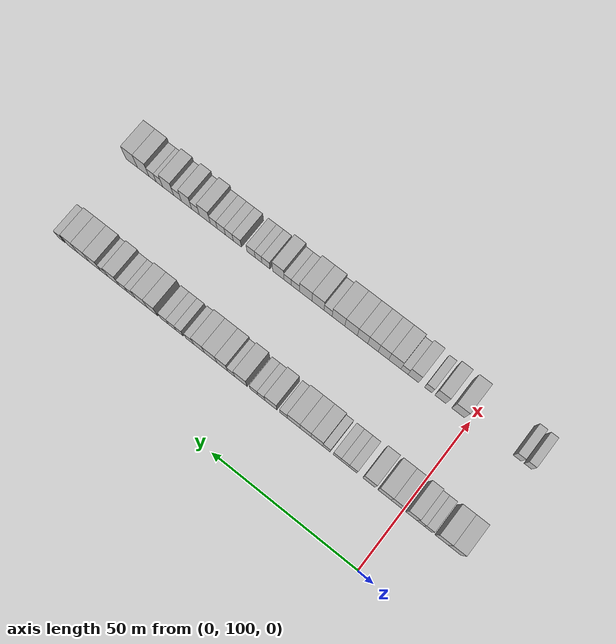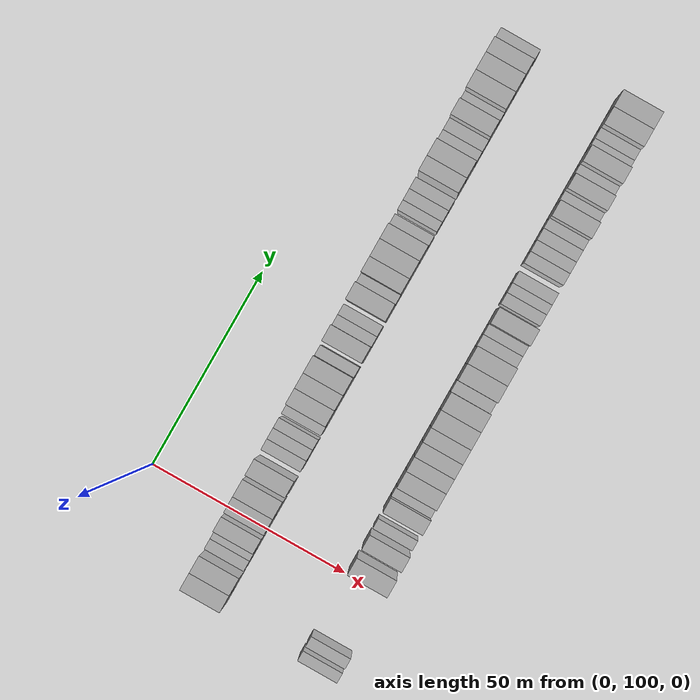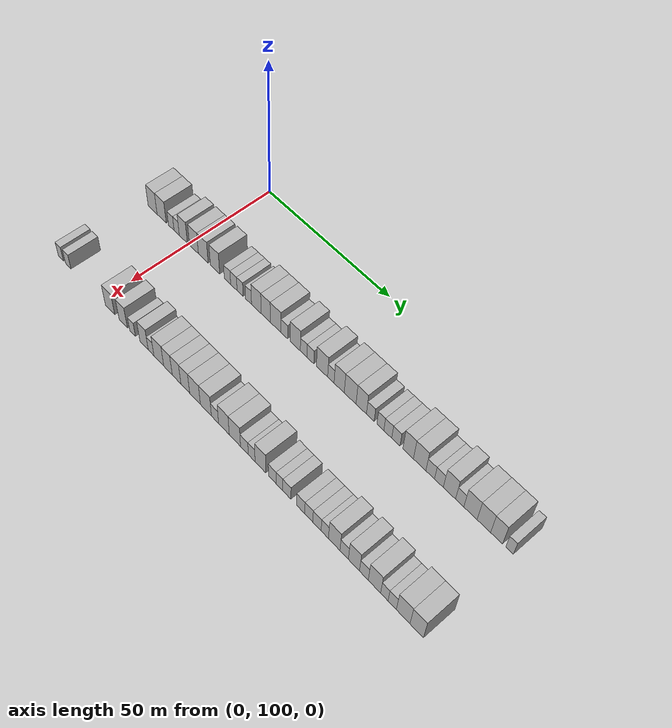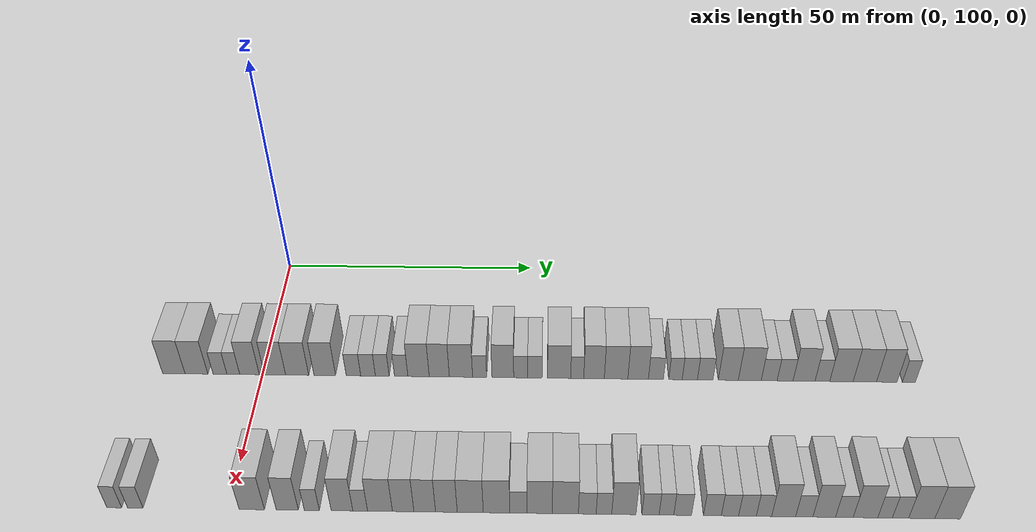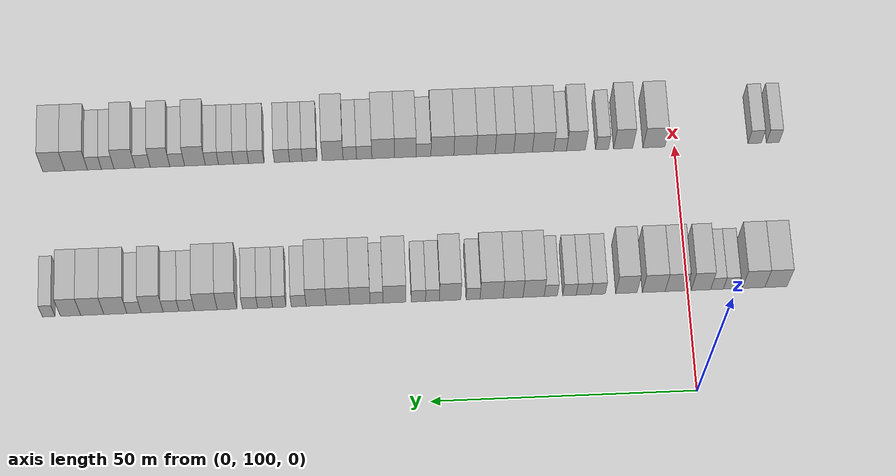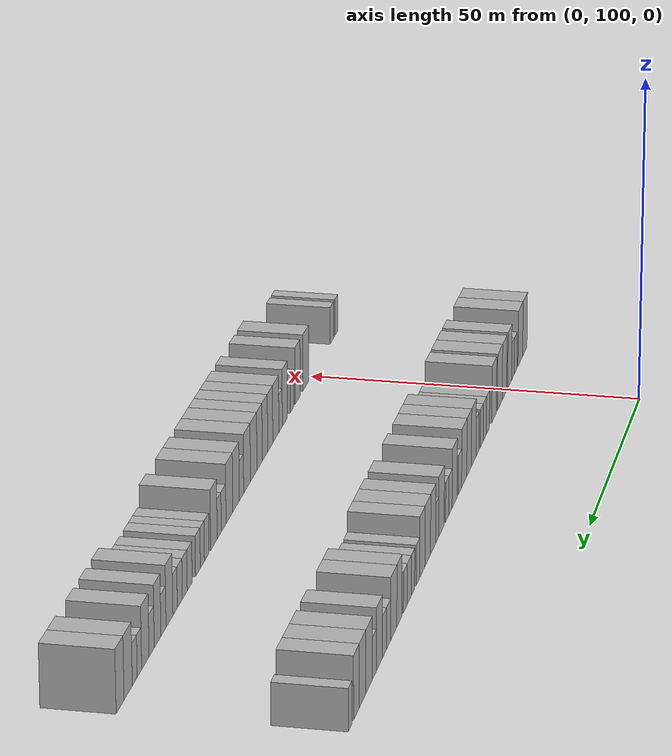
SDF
<sdf version="1.6">
 <world name="default">
  <model name="building_72">
   <static>1</static>
   <pose>25.0000 83.2358 0 0.000000 0.000000 0.000000</pose>
   <link name="link">
    <pose>0 0 4.50 0 0 0</pose>
    <collision name="collision"><geometry><box><size>10.0000 4.2344 9.0000</size></box></geometry></collision>
    <visual name="visual">
     <cast_shadows>0</cast_shadows>
     <geometry><box><size>10.0000 4.2344 9.0000</size></box></geometry>
     <material>
      <script>
       <uri>model://HANNAS_wall/materials/scripts</uri>
       <uri>model://HANNAS_wall/materials/textures</uri>
       <name>vrc/HANNAS_wall</name>
      </script>
     </material>
    </visual>
   </link>
  </model>
  <model name="building_73">
   <static>1</static>
   <pose>25.0000 87.5097 0 0.000000 0.000000 0.000000</pose>
   <link name="link">
    <pose>0 0 4.50 0 0 0</pose>
    <collision name="collision"><geometry><box><size>10.0000 4.3134 9.0000</size></box></geometry></collision>
    <visual name="visual">
     <cast_shadows>0</cast_shadows>
     <geometry><box><size>10.0000 4.3134 9.0000</size></box></geometry>
     <material>
      <script>
       <uri>model://HANNAS_wall/materials/scripts</uri>
       <uri>model://HANNAS_wall/materials/textures</uri>
       <name>vrc/HANNAS_wall</name>
      </script>
     </material>
    </visual>
   </link>
  </model>
  <model name="building_74">
   <static>1</static>
   <pose>25.0000 91.9741 0 0.000000 0.000000 0.000000</pose>
   <link name="link">
    <pose>0 0 3.00 0 0 0</pose>
    <collision name="collision"><geometry><box><size>10.0000 2.6152 6.0000</size></box></geometry></collision>
    <visual name="visual">
     <cast_shadows>0</cast_shadows>
     <geometry><box><size>10.0000 2.6152 6.0000</size></box></geometry>
     <material>
      <script>
       <uri>model://HANNAS_wall/materials/scripts</uri>
       <uri>model://HANNAS_wall/materials/textures</uri>
       <name>vrc/HANNAS_wall</name>
      </script>
     </material>
    </visual>
   </link>
  </model>
  <model name="building_75">
   <static>1</static>
   <pose>25.0000 94.4930 0 0.000000 0.000000 0.000000</pose>
   <link name="link">
    <pose>0 0 3.00 0 0 0</pose>
    <collision name="collision"><geometry><box><size>10.0000 2.4226 6.0000</size></box></geometry></collision>
    <visual name="visual">
     <cast_shadows>0</cast_shadows>
     <geometry><box><size>10.0000 2.4226 6.0000</size></box></geometry>
     <material>
      <script>
       <uri>model://HANNAS_wall/materials/scripts</uri>
       <uri>model://HANNAS_wall/materials/textures</uri>
       <name>vrc/HANNAS_wall</name>
      </script>
     </material>
    </visual>
   </link>
  </model>
  <model name="building_76">
   <static>1</static>
   <pose>25.0000 97.5545 0 0.000000 0.000000 0.000000</pose>
   <link name="link">
    <pose>0 0 4.50 0 0 0</pose>
    <collision name="collision"><geometry><box><size>10.0000 3.7004 9.0000</size></box></geometry></collision>
    <visual name="visual">
     <cast_shadows>0</cast_shadows>
     <geometry><box><size>10.0000 3.7004 9.0000</size></box></geometry>
     <material>
      <script>
       <uri>model://HANNAS_wall/materials/scripts</uri>
       <uri>model://HANNAS_wall/materials/textures</uri>
       <name>vrc/HANNAS_wall</name>
      </script>
     </material>
    </visual>
   </link>
  </model>
  <model name="building_77">
   <static>1</static>
   <pose>25.0000 102.3919 0 0.000000 0.000000 0.000000</pose>
   <link name="link">
    <pose>0 0 4.50 0 0 0</pose>
    <collision name="collision"><geometry><box><size>10.0000 3.9744 9.0000</size></box></geometry></collision>
    <visual name="visual">
     <cast_shadows>0</cast_shadows>
     <geometry><box><size>10.0000 3.9744 9.0000</size></box></geometry>
     <material>
      <script>
       <uri>model://HANNAS_wall/materials/scripts</uri>
       <uri>model://HANNAS_wall/materials/textures</uri>
       <name>vrc/HANNAS_wall</name>
      </script>
     </material>
    </visual>
   </link>
  </model>
  <model name="building_78">
   <static>1</static>
   <pose>25.0000 106.5588 0 0.000000 0.000000 0.000000</pose>
   <link name="link">
    <pose>0 0 4.50 0 0 0</pose>
    <collision name="collision"><geometry><box><size>10.0000 4.3595 9.0000</size></box></geometry></collision>
    <visual name="visual">
     <cast_shadows>0</cast_shadows>
     <geometry><box><size>10.0000 4.3595 9.0000</size></box></geometry>
     <material>
      <script>
       <uri>model://HANNAS_wall/materials/scripts</uri>
       <uri>model://HANNAS_wall/materials/textures</uri>
       <name>vrc/HANNAS_wall</name>
      </script>
     </material>
    </visual>
   </link>
  </model>
  <model name="building_79">
   <static>1</static>
   <pose>25.0000 111.7794 0 0.000000 0.000000 0.000000</pose>
   <link name="link">
    <pose>0 0 4.50 0 0 0</pose>
    <collision name="collision"><geometry><box><size>10.0000 4.0816 9.0000</size></box></geometry></collision>
    <visual name="visual">
     <cast_shadows>0</cast_shadows>
     <geometry><box><size>10.0000 4.0816 9.0000</size></box></geometry>
     <material>
      <script>
       <uri>model://HANNAS_wall/materials/scripts</uri>
       <uri>model://HANNAS_wall/materials/textures</uri>
       <name>vrc/HANNAS_wall</name>
      </script>
     </material>
    </visual>
   </link>
  </model>
  <model name="building_80">
   <static>1</static>
   <pose>25.0000 117.1928 0 0.000000 0.000000 0.000000</pose>
   <link name="link">
    <pose>0 0 3.00 0 0 0</pose>
    <collision name="collision"><geometry><box><size>10.0000 2.7452 6.0000</size></box></geometry></collision>
    <visual name="visual">
     <cast_shadows>0</cast_shadows>
     <geometry><box><size>10.0000 2.7452 6.0000</size></box></geometry>
     <material>
      <script>
       <uri>model://HANNAS_wall/materials/scripts</uri>
       <uri>model://HANNAS_wall/materials/textures</uri>
       <name>vrc/HANNAS_wall</name>
      </script>
     </material>
    </visual>
   </link>
  </model>
  <model name="building_81">
   <static>1</static>
   <pose>25.0000 119.9479 0 0.000000 0.000000 0.000000</pose>
   <link name="link">
    <pose>0 0 3.00 0 0 0</pose>
    <collision name="collision"><geometry><box><size>10.0000 2.7650 6.0000</size></box></geometry></collision>
    <visual name="visual">
     <cast_shadows>0</cast_shadows>
     <geometry><box><size>10.0000 2.7650 6.0000</size></box></geometry>
     <material>
      <script>
       <uri>model://HANNAS_wall/materials/scripts</uri>
       <uri>model://HANNAS_wall/materials/textures</uri>
       <name>vrc/HANNAS_wall</name>
      </script>
     </material>
    </visual>
   </link>
  </model>
  <model name="building_82">
   <static>1</static>
   <pose>25.0000 122.6260 0 0.000000 0.000000 0.000000</pose>
   <link name="link">
    <pose>0 0 3.00 0 0 0</pose>
    <collision name="collision"><geometry><box><size>10.0000 2.5912 6.0000</size></box></geometry></collision>
    <visual name="visual">
     <cast_shadows>0</cast_shadows>
     <geometry><box><size>10.0000 2.5912 6.0000</size></box></geometry>
     <material>
      <script>
       <uri>model://HANNAS_wall/materials/scripts</uri>
       <uri>model://HANNAS_wall/materials/textures</uri>
       <name>vrc/HANNAS_wall</name>
      </script>
     </material>
    </visual>
   </link>
  </model>
  <model name="building_83">
   <static>1</static>
   <pose>25.0000 126.1845 0 0.000000 0.000000 0.000000</pose>
   <link name="link">
    <pose>0 0 3.00 0 0 0</pose>
    <collision name="collision"><geometry><box><size>10.0000 2.5257 6.0000</size></box></geometry></collision>
    <visual name="visual">
     <cast_shadows>0</cast_shadows>
     <geometry><box><size>10.0000 2.5257 6.0000</size></box></geometry>
     <material>
      <script>
       <uri>model://HANNAS_wall/materials/scripts</uri>
       <uri>model://HANNAS_wall/materials/textures</uri>
       <name>vrc/HANNAS_wall</name>
      </script>
     </material>
    </visual>
   </link>
  </model>
  <model name="building_84">
   <static>1</static>
   <pose>25.0000 129.4608 0 0.000000 0.000000 0.000000</pose>
   <link name="link">
    <pose>0 0 4.50 0 0 0</pose>
    <collision name="collision"><geometry><box><size>10.0000 4.0270 9.0000</size></box></geometry></collision>
    <visual name="visual">
     <cast_shadows>0</cast_shadows>
     <geometry><box><size>10.0000 4.0270 9.0000</size></box></geometry>
     <material>
      <script>
       <uri>model://HANNAS_wall/materials/scripts</uri>
       <uri>model://HANNAS_wall/materials/textures</uri>
       <name>vrc/HANNAS_wall</name>
      </script>
     </material>
    </visual>
   </link>
  </model>
  <model name="building_85">
   <static>1</static>
   <pose>25.0000 133.3678 0 0.000000 0.000000 0.000000</pose>
   <link name="link">
    <pose>0 0 4.50 0 0 0</pose>
    <collision name="collision"><geometry><box><size>10.0000 3.7869 9.0000</size></box></geometry></collision>
    <visual name="visual">
     <cast_shadows>0</cast_shadows>
     <geometry><box><size>10.0000 3.7869 9.0000</size></box></geometry>
     <material>
      <script>
       <uri>model://HANNAS_wall/materials/scripts</uri>
       <uri>model://HANNAS_wall/materials/textures</uri>
       <name>vrc/HANNAS_wall</name>
      </script>
     </material>
    </visual>
   </link>
  </model>
  <model name="building_86">
   <static>1</static>
   <pose>25.0000 137.4523 0 0.000000 0.000000 0.000000</pose>
   <link name="link">
    <pose>0 0 4.50 0 0 0</pose>
    <collision name="collision"><geometry><box><size>10.0000 4.3822 9.0000</size></box></geometry></collision>
    <visual name="visual">
     <cast_shadows>0</cast_shadows>
     <geometry><box><size>10.0000 4.3822 9.0000</size></box></geometry>
     <material>
      <script>
       <uri>model://HANNAS_wall/materials/scripts</uri>
       <uri>model://HANNAS_wall/materials/textures</uri>
       <name>vrc/HANNAS_wall</name>
      </script>
     </material>
    </visual>
   </link>
  </model>
  <model name="building_87">
   <static>1</static>
   <pose>25.0000 140.9687 0 0.000000 0.000000 0.000000</pose>
   <link name="link">
    <pose>0 0 3.00 0 0 0</pose>
    <collision name="collision"><geometry><box><size>10.0000 2.6504 6.0000</size></box></geometry></collision>
    <visual name="visual">
     <cast_shadows>0</cast_shadows>
     <geometry><box><size>10.0000 2.6504 6.0000</size></box></geometry>
     <material>
      <script>
       <uri>model://HANNAS_wall/materials/scripts</uri>
       <uri>model://HANNAS_wall/materials/textures</uri>
       <name>vrc/HANNAS_wall</name>
      </script>
     </material>
    </visual>
   </link>
  </model>
  <model name="building_88">
   <static>1</static>
   <pose>25.0000 145.3380 0 0.000000 0.000000 0.000000</pose>
   <link name="link">
    <pose>0 0 4.50 0 0 0</pose>
    <collision name="collision"><geometry><box><size>10.0000 4.0882 9.0000</size></box></geometry></collision>
    <visual name="visual">
     <cast_shadows>0</cast_shadows>
     <geometry><box><size>10.0000 4.0882 9.0000</size></box></geometry>
     <material>
      <script>
       <uri>model://HANNAS_wall/materials/scripts</uri>
       <uri>model://HANNAS_wall/materials/textures</uri>
       <name>vrc/HANNAS_wall</name>
      </script>
     </material>
    </visual>
   </link>
  </model>
  <model name="building_89">
   <static>1</static>
   <pose>25.0000 148.6905 0 0.000000 0.000000 0.000000</pose>
   <link name="link">
    <pose>0 0 3.00 0 0 0</pose>
    <collision name="collision"><geometry><box><size>10.0000 2.6167 6.0000</size></box></geometry></collision>
    <visual name="visual">
     <cast_shadows>0</cast_shadows>
     <geometry><box><size>10.0000 2.6167 6.0000</size></box></geometry>
     <material>
      <script>
       <uri>model://HANNAS_wall/materials/scripts</uri>
       <uri>model://HANNAS_wall/materials/textures</uri>
       <name>vrc/HANNAS_wall</name>
      </script>
     </material>
    </visual>
   </link>
  </model>
  <model name="building_90">
   <static>1</static>
   <pose>25.0000 151.3574 0 0.000000 0.000000 0.000000</pose>
   <link name="link">
    <pose>0 0 3.00 0 0 0</pose>
    <collision name="collision"><geometry><box><size>10.0000 2.7171 6.0000</size></box></geometry></collision>
    <visual name="visual">
     <cast_shadows>0</cast_shadows>
     <geometry><box><size>10.0000 2.7171 6.0000</size></box></geometry>
     <material>
      <script>
       <uri>model://HANNAS_wall/materials/scripts</uri>
       <uri>model://HANNAS_wall/materials/textures</uri>
       <name>vrc/HANNAS_wall</name>
      </script>
     </material>
    </visual>
   </link>
  </model>
  <model name="building_91">
   <static>1</static>
   <pose>25.0000 155.8959 0 0.000000 0.000000 0.000000</pose>
   <link name="link">
    <pose>0 0 4.50 0 0 0</pose>
    <collision name="collision"><geometry><box><size>10.0000 4.3600 9.0000</size></box></geometry></collision>
    <visual name="visual">
     <cast_shadows>0</cast_shadows>
     <geometry><box><size>10.0000 4.3600 9.0000</size></box></geometry>
     <material>
      <script>
       <uri>model://HANNAS_wall/materials/scripts</uri>
       <uri>model://HANNAS_wall/materials/textures</uri>
       <name>vrc/HANNAS_wall</name>
      </script>
     </material>
    </visual>
   </link>
  </model>
  <model name="building_92">
   <static>1</static>
   <pose>25.0000 159.3043 0 0.000000 0.000000 0.000000</pose>
   <link name="link">
    <pose>0 0 3.00 0 0 0</pose>
    <collision name="collision"><geometry><box><size>10.0000 2.4568 6.0000</size></box></geometry></collision>
    <visual name="visual">
     <cast_shadows>0</cast_shadows>
     <geometry><box><size>10.0000 2.4568 6.0000</size></box></geometry>
     <material>
      <script>
       <uri>model://HANNAS_wall/materials/scripts</uri>
       <uri>model://HANNAS_wall/materials/textures</uri>
       <name>vrc/HANNAS_wall</name>
      </script>
     </material>
    </visual>
   </link>
  </model>
  <model name="building_93">
   <static>1</static>
   <pose>25.0000 162.4663 0 0.000000 0.000000 0.000000</pose>
   <link name="link">
    <pose>0 0 4.50 0 0 0</pose>
    <collision name="collision"><geometry><box><size>10.0000 3.8673 9.0000</size></box></geometry></collision>
    <visual name="visual">
     <cast_shadows>0</cast_shadows>
     <geometry><box><size>10.0000 3.8673 9.0000</size></box></geometry>
     <material>
      <script>
       <uri>model://HANNAS_wall/materials/scripts</uri>
       <uri>model://HANNAS_wall/materials/textures</uri>
       <name>vrc/HANNAS_wall</name>
      </script>
     </material>
    </visual>
   </link>
  </model>
  <model name="building_94">
   <static>1</static>
   <pose>25.0000 166.6119 0 0.000000 0.000000 0.000000</pose>
   <link name="link">
    <pose>0 0 4.50 0 0 0</pose>
    <collision name="collision"><geometry><box><size>10.0000 4.4240 9.0000</size></box></geometry></collision>
    <visual name="visual">
     <cast_shadows>0</cast_shadows>
     <geometry><box><size>10.0000 4.4240 9.0000</size></box></geometry>
     <material>
      <script>
       <uri>model://HANNAS_wall/materials/scripts</uri>
       <uri>model://HANNAS_wall/materials/textures</uri>
       <name>vrc/HANNAS_wall</name>
      </script>
     </material>
    </visual>
   </link>
  </model>
  <model name="building_95">
   <static>1</static>
   <pose>25.0000 170.7490 0 0.000000 0.000000 0.000000</pose>
   <link name="link">
    <pose>0 0 4.50 0 0 0</pose>
    <collision name="collision"><geometry><box><size>10.0000 3.8502 9.0000</size></box></geometry></collision>
    <visual name="visual">
     <cast_shadows>0</cast_shadows>
     <geometry><box><size>10.0000 3.8502 9.0000</size></box></geometry>
     <material>
      <script>
       <uri>model://HANNAS_wall/materials/scripts</uri>
       <uri>model://HANNAS_wall/materials/textures</uri>
       <name>vrc/HANNAS_wall</name>
      </script>
     </material>
    </visual>
   </link>
  </model>
  <model name="building_96">
   <static>1</static>
   <pose>25.0000 174.0809 0 0.000000 0.000000 0.000000</pose>
   <link name="link">
    <pose>0 0 3.00 0 0 0</pose>
    <collision name="collision"><geometry><box><size>10.0000 2.8134 6.0000</size></box></geometry></collision>
    <visual name="visual">
     <cast_shadows>0</cast_shadows>
     <geometry><box><size>10.0000 2.8134 6.0000</size></box></geometry>
     <material>
      <script>
       <uri>model://HANNAS_wall/materials/scripts</uri>
       <uri>model://HANNAS_wall/materials/textures</uri>
       <name>vrc/HANNAS_wall</name>
      </script>
     </material>
    </visual>
   </link>
  </model>
  <model name="building_97">
   <static>1</static>
   <pose>25.0000 177.7469 0 0.000000 0.000000 0.000000</pose>
   <link name="link">
    <pose>0 0 3.00 0 0 0</pose>
    <collision name="collision"><geometry><box><size>10.0000 2.5187 6.0000</size></box></geometry></collision>
    <visual name="visual">
     <cast_shadows>0</cast_shadows>
     <geometry><box><size>10.0000 2.5187 6.0000</size></box></geometry>
     <material>
      <script>
       <uri>model://HANNAS_wall/materials/scripts</uri>
       <uri>model://HANNAS_wall/materials/textures</uri>
       <name>vrc/HANNAS_wall</name>
      </script>
     </material>
    </visual>
   </link>
  </model>
  <model name="building_98">
   <static>1</static>
   <pose>25.0000 180.4329 0 0.000000 0.000000 0.000000</pose>
   <link name="link">
    <pose>0 0 3.00 0 0 0</pose>
    <collision name="collision"><geometry><box><size>10.0000 2.8532 6.0000</size></box></geometry></collision>
    <visual name="visual">
     <cast_shadows>0</cast_shadows>
     <geometry><box><size>10.0000 2.8532 6.0000</size></box></geometry>
     <material>
      <script>
       <uri>model://HANNAS_wall/materials/scripts</uri>
       <uri>model://HANNAS_wall/materials/textures</uri>
       <name>vrc/HANNAS_wall</name>
      </script>
     </material>
    </visual>
   </link>
  </model>
  <model name="building_99">
   <static>1</static>
   <pose>25.0000 183.3173 0 0.000000 0.000000 0.000000</pose>
   <link name="link">
    <pose>0 0 3.00 0 0 0</pose>
    <collision name="collision"><geometry><box><size>10.0000 2.9156 6.0000</size></box></geometry></collision>
    <visual name="visual">
     <cast_shadows>0</cast_shadows>
     <geometry><box><size>10.0000 2.9156 6.0000</size></box></geometry>
     <material>
      <script>
       <uri>model://HANNAS_wall/materials/scripts</uri>
       <uri>model://HANNAS_wall/materials/textures</uri>
       <name>vrc/HANNAS_wall</name>
      </script>
     </material>
    </visual>
   </link>
  </model>
  <model name="building_100">
   <static>1</static>
   <pose>25.0000 187.6502 0 0.000000 0.000000 0.000000</pose>
   <link name="link">
    <pose>0 0 4.50 0 0 0</pose>
    <collision name="collision"><geometry><box><size>10.0000 3.7503 9.0000</size></box></geometry></collision>
    <visual name="visual">
     <cast_shadows>0</cast_shadows>
     <geometry><box><size>10.0000 3.7503 9.0000</size></box></geometry>
     <material>
      <script>
       <uri>model://HANNAS_wall/materials/scripts</uri>
       <uri>model://HANNAS_wall/materials/textures</uri>
       <name>vrc/HANNAS_wall</name>
      </script>
     </material>
    </visual>
   </link>
  </model>
  <model name="building_101">
   <static>1</static>
   <pose>25.0000 191.6725 0 0.000000 0.000000 0.000000</pose>
   <link name="link">
    <pose>0 0 4.50 0 0 0</pose>
    <collision name="collision"><geometry><box><size>10.0000 4.2942 9.0000</size></box></geometry></collision>
    <visual name="visual">
     <cast_shadows>0</cast_shadows>
     <geometry><box><size>10.0000 4.2942 9.0000</size></box></geometry>
     <material>
      <script>
       <uri>model://HANNAS_wall/materials/scripts</uri>
       <uri>model://HANNAS_wall/materials/textures</uri>
       <name>vrc/HANNAS_wall</name>
      </script>
     </material>
    </visual>
   </link>
  </model>
  <model name="building_102">
   <static>1</static>
   <pose>25.0000 195.3036 0 0.000000 0.000000 0.000000</pose>
   <link name="link">
    <pose>0 0 3.00 0 0 0</pose>
    <collision name="collision"><geometry><box><size>10.0000 2.9680 6.0000</size></box></geometry></collision>
    <visual name="visual">
     <cast_shadows>0</cast_shadows>
     <geometry><box><size>10.0000 2.9680 6.0000</size></box></geometry>
     <material>
      <script>
       <uri>model://HANNAS_wall/materials/scripts</uri>
       <uri>model://HANNAS_wall/materials/textures</uri>
       <name>vrc/HANNAS_wall</name>
      </script>
     </material>
    </visual>
   </link>
  </model>
  <model name="building_103">
   <static>1</static>
   <pose>25.0000 198.2816 0 0.000000 0.000000 0.000000</pose>
   <link name="link">
    <pose>0 0 3.00 0 0 0</pose>
    <collision name="collision"><geometry><box><size>10.0000 2.9878 6.0000</size></box></geometry></collision>
    <visual name="visual">
     <cast_shadows>0</cast_shadows>
     <geometry><box><size>10.0000 2.9878 6.0000</size></box></geometry>
     <material>
      <script>
       <uri>model://HANNAS_wall/materials/scripts</uri>
       <uri>model://HANNAS_wall/materials/textures</uri>
       <name>vrc/HANNAS_wall</name>
      </script>
     </material>
    </visual>
   </link>
  </model>
  <model name="building_104">
   <static>1</static>
   <pose>25.0000 201.8304 0 0.000000 0.000000 0.000000</pose>
   <link name="link">
    <pose>0 0 4.50 0 0 0</pose>
    <collision name="collision"><geometry><box><size>10.0000 4.1099 9.0000</size></box></geometry></collision>
    <visual name="visual">
     <cast_shadows>0</cast_shadows>
     <geometry><box><size>10.0000 4.1099 9.0000</size></box></geometry>
     <material>
      <script>
       <uri>model://HANNAS_wall/materials/scripts</uri>
       <uri>model://HANNAS_wall/materials/textures</uri>
       <name>vrc/HANNAS_wall</name>
      </script>
     </material>
    </visual>
   </link>
  </model>
  <model name="building_105">
   <static>1</static>
   <pose>25.0000 205.2563 0 0.000000 0.000000 0.000000</pose>
   <link name="link">
    <pose>0 0 3.00 0 0 0</pose>
    <collision name="collision"><geometry><box><size>10.0000 2.7419 6.0000</size></box></geometry></collision>
    <visual name="visual">
     <cast_shadows>0</cast_shadows>
     <geometry><box><size>10.0000 2.7419 6.0000</size></box></geometry>
     <material>
      <script>
       <uri>model://HANNAS_wall/materials/scripts</uri>
       <uri>model://HANNAS_wall/materials/textures</uri>
       <name>vrc/HANNAS_wall</name>
      </script>
     </material>
    </visual>
   </link>
  </model>
  <model name="building_106">
   <static>1</static>
   <pose>25.0000 208.8102 0 0.000000 0.000000 0.000000</pose>
   <link name="link">
    <pose>0 0 4.50 0 0 0</pose>
    <collision name="collision"><geometry><box><size>10.0000 4.3661 9.0000</size></box></geometry></collision>
    <visual name="visual">
     <cast_shadows>0</cast_shadows>
     <geometry><box><size>10.0000 4.3661 9.0000</size></box></geometry>
     <material>
      <script>
       <uri>model://HANNAS_wall/materials/scripts</uri>
       <uri>model://HANNAS_wall/materials/textures</uri>
       <name>vrc/HANNAS_wall</name>
      </script>
     </material>
    </visual>
   </link>
  </model>
  <model name="building_107">
   <static>1</static>
   <pose>25.0000 213.1871 0 0.000000 0.000000 0.000000</pose>
   <link name="link">
    <pose>0 0 4.50 0 0 0</pose>
    <collision name="collision"><geometry><box><size>10.0000 4.3876 9.0000</size></box></geometry></collision>
    <visual name="visual">
     <cast_shadows>0</cast_shadows>
     <geometry><box><size>10.0000 4.3876 9.0000</size></box></geometry>
     <material>
      <script>
       <uri>model://HANNAS_wall/materials/scripts</uri>
       <uri>model://HANNAS_wall/materials/textures</uri>
       <name>vrc/HANNAS_wall</name>
      </script>
     </material>
    </visual>
   </link>
  </model>
  <model name="building_108">
   <static>1</static>
   <pose>25.0000 217.2935 0 0.000000 0.000000 0.000000</pose>
   <link name="link">
    <pose>0 0 4.50 0 0 0</pose>
    <collision name="collision"><geometry><box><size>10.0000 3.8252 9.0000</size></box></geometry></collision>
    <visual name="visual">
     <cast_shadows>0</cast_shadows>
     <geometry><box><size>10.0000 3.8252 9.0000</size></box></geometry>
     <material>
      <script>
       <uri>model://HANNAS_wall/materials/scripts</uri>
       <uri>model://HANNAS_wall/materials/textures</uri>
       <name>vrc/HANNAS_wall</name>
      </script>
     </material>
    </visual>
   </link>
  </model>
  <model name="building_109">
   <static>1</static>
   <pose>25.0000 221.4090 0 0.000000 0.000000 0.000000</pose>
   <link name="link">
    <pose>0 0 3.00 0 0 0</pose>
    <collision name="collision"><geometry><box><size>10.0000 2.4059 6.0000</size></box></geometry></collision>
    <visual name="visual">
     <cast_shadows>0</cast_shadows>
     <geometry><box><size>10.0000 2.4059 6.0000</size></box></geometry>
     <material>
      <script>
       <uri>model://HANNAS_wall/materials/scripts</uri>
       <uri>model://HANNAS_wall/materials/textures</uri>
       <name>vrc/HANNAS_wall</name>
      </script>
     </material>
    </visual>
   </link>
  </model>
  <model name="building_184">
   <static>1</static>
   <pose>55.0000 80.7401 0 0.000000 0.000000 0.000000</pose>
   <link name="link">
    <pose>0 0 3.00 0 0 0</pose>
    <collision name="collision"><geometry><box><size>10.0000 2.5058 6.0000</size></box></geometry></collision>
    <visual name="visual">
     <cast_shadows>0</cast_shadows>
     <geometry><box><size>10.0000 2.5058 6.0000</size></box></geometry>
     <material>
      <script>
       <uri>model://HANNAS_wall/materials/scripts</uri>
       <uri>model://HANNAS_wall/materials/textures</uri>
       <name>vrc/HANNAS_wall</name>
      </script>
     </material>
    </visual>
   </link>
  </model>
  <model name="building_185">
   <static>1</static>
   <pose>55.0000 84.3030 0 0.000000 0.000000 0.000000</pose>
   <link name="link">
    <pose>0 0 3.00 0 0 0</pose>
    <collision name="collision"><geometry><box><size>10.0000 2.6201 6.0000</size></box></geometry></collision>
    <visual name="visual">
     <cast_shadows>0</cast_shadows>
     <geometry><box><size>10.0000 2.6201 6.0000</size></box></geometry>
     <material>
      <script>
       <uri>model://HANNAS_wall/materials/scripts</uri>
       <uri>model://HANNAS_wall/materials/textures</uri>
       <name>vrc/HANNAS_wall</name>
      </script>
     </material>
    </visual>
   </link>
  </model>
  <model name="building_186">
   <static>1</static>
   <pose>55.0000 104.0351 0 0.000000 0.000000 0.000000</pose>
   <link name="link">
    <pose>0 0 4.50 0 0 0</pose>
    <collision name="collision"><geometry><box><size>10.0000 4.2813 9.0000</size></box></geometry></collision>
    <visual name="visual">
     <cast_shadows>0</cast_shadows>
     <geometry><box><size>10.0000 4.2813 9.0000</size></box></geometry>
     <material>
      <script>
       <uri>model://HANNAS_wall/materials/scripts</uri>
       <uri>model://HANNAS_wall/materials/textures</uri>
       <name>vrc/HANNAS_wall</name>
      </script>
     </material>
    </visual>
   </link>
  </model>
  <model name="building_187">
   <static>1</static>
   <pose>55.0000 110.0447 0 0.000000 0.000000 0.000000</pose>
   <link name="link">
    <pose>0 0 4.50 0 0 0</pose>
    <collision name="collision"><geometry><box><size>10.0000 3.7378 9.0000</size></box></geometry></collision>
    <visual name="visual">
     <cast_shadows>0</cast_shadows>
     <geometry><box><size>10.0000 3.7378 9.0000</size></box></geometry>
     <material>
      <script>
       <uri>model://HANNAS_wall/materials/scripts</uri>
       <uri>model://HANNAS_wall/materials/textures</uri>
       <name>vrc/HANNAS_wall</name>
      </script>
     </material>
    </visual>
   </link>
  </model>
  <model name="building_188">
   <static>1</static>
   <pose>55.0000 114.1851 0 0.000000 0.000000 0.000000</pose>
   <link name="link">
    <pose>0 0 3.00 0 0 0</pose>
    <collision name="collision"><geometry><box><size>10.0000 2.5429 6.0000</size></box></geometry></collision>
    <visual name="visual">
     <cast_shadows>0</cast_shadows>
     <geometry><box><size>10.0000 2.5429 6.0000</size></box></geometry>
     <material>
      <script>
       <uri>model://HANNAS_wall/materials/scripts</uri>
       <uri>model://HANNAS_wall/materials/textures</uri>
       <name>vrc/HANNAS_wall</name>
      </script>
     </material>
    </visual>
   </link>
  </model>
  <model name="building_189">
   <static>1</static>
   <pose>55.0000 119.2848 0 0.000000 0.000000 0.000000</pose>
   <link name="link">
    <pose>0 0 4.50 0 0 0</pose>
    <collision name="collision"><geometry><box><size>10.0000 3.6566 9.0000</size></box></geometry></collision>
    <visual name="visual">
     <cast_shadows>0</cast_shadows>
     <geometry><box><size>10.0000 3.6566 9.0000</size></box></geometry>
     <material>
      <script>
       <uri>model://HANNAS_wall/materials/scripts</uri>
       <uri>model://HANNAS_wall/materials/textures</uri>
       <name>vrc/HANNAS_wall</name>
      </script>
     </material>
    </visual>
   </link>
  </model>
  <model name="building_190">
   <static>1</static>
   <pose>55.0000 122.3532 0 0.000000 0.000000 0.000000</pose>
   <link name="link">
    <pose>0 0 3.00 0 0 0</pose>
    <collision name="collision"><geometry><box><size>10.0000 2.4801 6.0000</size></box></geometry></collision>
    <visual name="visual">
     <cast_shadows>0</cast_shadows>
     <geometry><box><size>10.0000 2.4801 6.0000</size></box></geometry>
     <material>
      <script>
       <uri>model://HANNAS_wall/materials/scripts</uri>
       <uri>model://HANNAS_wall/materials/textures</uri>
       <name>vrc/HANNAS_wall</name>
      </script>
     </material>
    </visual>
   </link>
  </model>
  <model name="building_191">
   <static>1</static>
   <pose>55.0000 125.6932 0 0.000000 0.000000 0.000000</pose>
   <link name="link">
    <pose>0 0 4.50 0 0 0</pose>
    <collision name="collision"><geometry><box><size>10.0000 4.2000 9.0000</size></box></geometry></collision>
    <visual name="visual">
     <cast_shadows>0</cast_shadows>
     <geometry><box><size>10.0000 4.2000 9.0000</size></box></geometry>
     <material>
      <script>
       <uri>model://HANNAS_wall/materials/scripts</uri>
       <uri>model://HANNAS_wall/materials/textures</uri>
       <name>vrc/HANNAS_wall</name>
      </script>
     </material>
    </visual>
   </link>
  </model>
  <model name="building_192">
   <static>1</static>
   <pose>55.0000 129.6065 0 0.000000 0.000000 0.000000</pose>
   <link name="link">
    <pose>0 0 4.50 0 0 0</pose>
    <collision name="collision"><geometry><box><size>10.0000 3.6265 9.0000</size></box></geometry></collision>
    <visual name="visual">
     <cast_shadows>0</cast_shadows>
     <geometry><box><size>10.0000 3.6265 9.0000</size></box></geometry>
     <material>
      <script>
       <uri>model://HANNAS_wall/materials/scripts</uri>
       <uri>model://HANNAS_wall/materials/textures</uri>
       <name>vrc/HANNAS_wall</name>
      </script>
     </material>
    </visual>
   </link>
  </model>
  <model name="building_193">
   <static>1</static>
   <pose>55.0000 133.2397 0 0.000000 0.000000 0.000000</pose>
   <link name="link">
    <pose>0 0 4.50 0 0 0</pose>
    <collision name="collision"><geometry><box><size>10.0000 3.6400 9.0000</size></box></geometry></collision>
    <visual name="visual">
     <cast_shadows>0</cast_shadows>
     <geometry><box><size>10.0000 3.6400 9.0000</size></box></geometry>
     <material>
      <script>
       <uri>model://HANNAS_wall/materials/scripts</uri>
       <uri>model://HANNAS_wall/materials/textures</uri>
       <name>vrc/HANNAS_wall</name>
      </script>
     </material>
    </visual>
   </link>
  </model>
  <model name="building_194">
   <static>1</static>
   <pose>55.0000 136.8862 0 0.000000 0.000000 0.000000</pose>
   <link name="link">
    <pose>0 0 4.50 0 0 0</pose>
    <collision name="collision"><geometry><box><size>10.0000 3.6530 9.0000</size></box></geometry></collision>
    <visual name="visual">
     <cast_shadows>0</cast_shadows>
     <geometry><box><size>10.0000 3.6530 9.0000</size></box></geometry>
     <material>
      <script>
       <uri>model://HANNAS_wall/materials/scripts</uri>
       <uri>model://HANNAS_wall/materials/textures</uri>
       <name>vrc/HANNAS_wall</name>
      </script>
     </material>
    </visual>
   </link>
  </model>
  <model name="building_195">
   <static>1</static>
   <pose>55.0000 140.9059 0 0.000000 0.000000 0.000000</pose>
   <link name="link">
    <pose>0 0 4.50 0 0 0</pose>
    <collision name="collision"><geometry><box><size>10.0000 4.3864 9.0000</size></box></geometry></collision>
    <visual name="visual">
     <cast_shadows>0</cast_shadows>
     <geometry><box><size>10.0000 4.3864 9.0000</size></box></geometry>
     <material>
      <script>
       <uri>model://HANNAS_wall/materials/scripts</uri>
       <uri>model://HANNAS_wall/materials/textures</uri>
       <name>vrc/HANNAS_wall</name>
      </script>
     </material>
    </visual>
   </link>
  </model>
  <model name="building_196">
   <static>1</static>
   <pose>55.0000 145.3343 0 0.000000 0.000000 0.000000</pose>
   <link name="link">
    <pose>0 0 4.50 0 0 0</pose>
    <collision name="collision"><geometry><box><size>10.0000 4.4703 9.0000</size></box></geometry></collision>
    <visual name="visual">
     <cast_shadows>0</cast_shadows>
     <geometry><box><size>10.0000 4.4703 9.0000</size></box></geometry>
     <material>
      <script>
       <uri>model://HANNAS_wall/materials/scripts</uri>
       <uri>model://HANNAS_wall/materials/textures</uri>
       <name>vrc/HANNAS_wall</name>
      </script>
     </material>
    </visual>
   </link>
  </model>
  <model name="building_197">
   <static>1</static>
   <pose>55.0000 149.0142 0 0.000000 0.000000 0.000000</pose>
   <link name="link">
    <pose>0 0 3.00 0 0 0</pose>
    <collision name="collision"><geometry><box><size>10.0000 2.8895 6.0000</size></box></geometry></collision>
    <visual name="visual">
     <cast_shadows>0</cast_shadows>
     <geometry><box><size>10.0000 2.8895 6.0000</size></box></geometry>
     <material>
      <script>
       <uri>model://HANNAS_wall/materials/scripts</uri>
       <uri>model://HANNAS_wall/materials/textures</uri>
       <name>vrc/HANNAS_wall</name>
      </script>
     </material>
    </visual>
   </link>
  </model>
  <model name="building_198">
   <static>1</static>
   <pose>55.0000 152.5668 0 0.000000 0.000000 0.000000</pose>
   <link name="link">
    <pose>0 0 4.50 0 0 0</pose>
    <collision name="collision"><geometry><box><size>10.0000 4.2158 9.0000</size></box></geometry></collision>
    <visual name="visual">
     <cast_shadows>0</cast_shadows>
     <geometry><box><size>10.0000 4.2158 9.0000</size></box></geometry>
     <material>
      <script>
       <uri>model://HANNAS_wall/materials/scripts</uri>
       <uri>model://HANNAS_wall/materials/textures</uri>
       <name>vrc/HANNAS_wall</name>
      </script>
     </material>
    </visual>
   </link>
  </model>
  <model name="building_199">
   <static>1</static>
   <pose>55.0000 156.8788 0 0.000000 0.000000 0.000000</pose>
   <link name="link">
    <pose>0 0 4.50 0 0 0</pose>
    <collision name="collision"><geometry><box><size>10.0000 4.4080 9.0000</size></box></geometry></collision>
    <visual name="visual">
     <cast_shadows>0</cast_shadows>
     <geometry><box><size>10.0000 4.4080 9.0000</size></box></geometry>
     <material>
      <script>
       <uri>model://HANNAS_wall/materials/scripts</uri>
       <uri>model://HANNAS_wall/materials/textures</uri>
       <name>vrc/HANNAS_wall</name>
      </script>
     </material>
    </visual>
   </link>
  </model>
  <model name="building_200">
   <static>1</static>
   <pose>55.0000 160.5764 0 0.000000 0.000000 0.000000</pose>
   <link name="link">
    <pose>0 0 3.00 0 0 0</pose>
    <collision name="collision"><geometry><box><size>10.0000 2.9871 6.0000</size></box></geometry></collision>
    <visual name="visual">
     <cast_shadows>0</cast_shadows>
     <geometry><box><size>10.0000 2.9871 6.0000</size></box></geometry>
     <material>
      <script>
       <uri>model://HANNAS_wall/materials/scripts</uri>
       <uri>model://HANNAS_wall/materials/textures</uri>
       <name>vrc/HANNAS_wall</name>
      </script>
     </material>
    </visual>
   </link>
  </model>
  <model name="building_201">
   <static>1</static>
   <pose>55.0000 163.3793 0 0.000000 0.000000 0.000000</pose>
   <link name="link">
    <pose>0 0 3.00 0 0 0</pose>
    <collision name="collision"><geometry><box><size>10.0000 2.6188 6.0000</size></box></geometry></collision>
    <visual name="visual">
     <cast_shadows>0</cast_shadows>
     <geometry><box><size>10.0000 2.6188 6.0000</size></box></geometry>
     <material>
      <script>
       <uri>model://HANNAS_wall/materials/scripts</uri>
       <uri>model://HANNAS_wall/materials/textures</uri>
       <name>vrc/HANNAS_wall</name>
      </script>
     </material>
    </visual>
   </link>
  </model>
  <model name="building_202">
   <static>1</static>
   <pose>55.0000 166.7215 0 0.000000 0.000000 0.000000</pose>
   <link name="link">
    <pose>0 0 4.50 0 0 0</pose>
    <collision name="collision"><geometry><box><size>10.0000 4.0655 9.0000</size></box></geometry></collision>
    <visual name="visual">
     <cast_shadows>0</cast_shadows>
     <geometry><box><size>10.0000 4.0655 9.0000</size></box></geometry>
     <material>
      <script>
       <uri>model://HANNAS_wall/materials/scripts</uri>
       <uri>model://HANNAS_wall/materials/textures</uri>
       <name>vrc/HANNAS_wall</name>
      </script>
     </material>
    </visual>
   </link>
  </model>
  <model name="building_203">
   <static>1</static>
   <pose>55.0000 171.1969 0 0.000000 0.000000 0.000000</pose>
   <link name="link">
    <pose>0 0 3.00 0 0 0</pose>
    <collision name="collision"><geometry><box><size>10.0000 2.8853 6.0000</size></box></geometry></collision>
    <visual name="visual">
     <cast_shadows>0</cast_shadows>
     <geometry><box><size>10.0000 2.8853 6.0000</size></box></geometry>
     <material>
      <script>
       <uri>model://HANNAS_wall/materials/scripts</uri>
       <uri>model://HANNAS_wall/materials/textures</uri>
       <name>vrc/HANNAS_wall</name>
      </script>
     </material>
    </visual>
   </link>
  </model>
  <model name="building_204">
   <static>1</static>
   <pose>55.0000 173.8692 0 0.000000 0.000000 0.000000</pose>
   <link name="link">
    <pose>0 0 3.00 0 0 0</pose>
    <collision name="collision"><geometry><box><size>10.0000 2.4594 6.0000</size></box></geometry></collision>
    <visual name="visual">
     <cast_shadows>0</cast_shadows>
     <geometry><box><size>10.0000 2.4594 6.0000</size></box></geometry>
     <material>
      <script>
       <uri>model://HANNAS_wall/materials/scripts</uri>
       <uri>model://HANNAS_wall/materials/textures</uri>
       <name>vrc/HANNAS_wall</name>
      </script>
     </material>
    </visual>
   </link>
  </model>
  <model name="building_205">
   <static>1</static>
   <pose>55.0000 176.5883 0 0.000000 0.000000 0.000000</pose>
   <link name="link">
    <pose>0 0 3.00 0 0 0</pose>
    <collision name="collision"><geometry><box><size>10.0000 2.9788 6.0000</size></box></geometry></collision>
    <visual name="visual">
     <cast_shadows>0</cast_shadows>
     <geometry><box><size>10.0000 2.9788 6.0000</size></box></geometry>
     <material>
      <script>
       <uri>model://HANNAS_wall/materials/scripts</uri>
       <uri>model://HANNAS_wall/materials/textures</uri>
       <name>vrc/HANNAS_wall</name>
      </script>
     </material>
    </visual>
   </link>
  </model>
  <model name="building_206">
   <static>1</static>
   <pose>55.0000 181.5776 0 0.000000 0.000000 0.000000</pose>
   <link name="link">
    <pose>0 0 3.00 0 0 0</pose>
    <collision name="collision"><geometry><box><size>10.0000 2.9997 6.0000</size></box></geometry></collision>
    <visual name="visual">
     <cast_shadows>0</cast_shadows>
     <geometry><box><size>10.0000 2.9997 6.0000</size></box></geometry>
     <material>
      <script>
       <uri>model://HANNAS_wall/materials/scripts</uri>
       <uri>model://HANNAS_wall/materials/textures</uri>
       <name>vrc/HANNAS_wall</name>
      </script>
     </material>
    </visual>
   </link>
  </model>
  <model name="building_207">
   <static>1</static>
   <pose>55.0000 184.5183 0 0.000000 0.000000 0.000000</pose>
   <link name="link">
    <pose>0 0 3.00 0 0 0</pose>
    <collision name="collision"><geometry><box><size>10.0000 2.8818 6.0000</size></box></geometry></collision>
    <visual name="visual">
     <cast_shadows>0</cast_shadows>
     <geometry><box><size>10.0000 2.8818 6.0000</size></box></geometry>
     <material>
      <script>
       <uri>model://HANNAS_wall/materials/scripts</uri>
       <uri>model://HANNAS_wall/materials/textures</uri>
       <name>vrc/HANNAS_wall</name>
      </script>
     </material>
    </visual>
   </link>
  </model>
  <model name="building_208">
   <static>1</static>
   <pose>55.0000 187.4446 0 0.000000 0.000000 0.000000</pose>
   <link name="link">
    <pose>0 0 3.00 0 0 0</pose>
    <collision name="collision"><geometry><box><size>10.0000 2.9707 6.0000</size></box></geometry></collision>
    <visual name="visual">
     <cast_shadows>0</cast_shadows>
     <geometry><box><size>10.0000 2.9707 6.0000</size></box></geometry>
     <material>
      <script>
       <uri>model://HANNAS_wall/materials/scripts</uri>
       <uri>model://HANNAS_wall/materials/textures</uri>
       <name>vrc/HANNAS_wall</name>
      </script>
     </material>
    </visual>
   </link>
  </model>
  <model name="building_209">
   <static>1</static>
   <pose>55.0000 190.2129 0 0.000000 0.000000 0.000000</pose>
   <link name="link">
    <pose>0 0 3.00 0 0 0</pose>
    <collision name="collision"><geometry><box><size>10.0000 2.5660 6.0000</size></box></geometry></collision>
    <visual name="visual">
     <cast_shadows>0</cast_shadows>
     <geometry><box><size>10.0000 2.5660 6.0000</size></box></geometry>
     <material>
      <script>
       <uri>model://HANNAS_wall/materials/scripts</uri>
       <uri>model://HANNAS_wall/materials/textures</uri>
       <name>vrc/HANNAS_wall</name>
      </script>
     </material>
    </visual>
   </link>
  </model>
  <model name="building_210">
   <static>1</static>
   <pose>55.0000 193.5050 0 0.000000 0.000000 0.000000</pose>
   <link name="link">
    <pose>0 0 4.50 0 0 0</pose>
    <collision name="collision"><geometry><box><size>10.0000 4.0183 9.0000</size></box></geometry></collision>
    <visual name="visual">
     <cast_shadows>0</cast_shadows>
     <geometry><box><size>10.0000 4.0183 9.0000</size></box></geometry>
     <material>
      <script>
       <uri>model://HANNAS_wall/materials/scripts</uri>
       <uri>model://HANNAS_wall/materials/textures</uri>
       <name>vrc/HANNAS_wall</name>
      </script>
     </material>
    </visual>
   </link>
  </model>
  <model name="building_211">
   <static>1</static>
   <pose>55.0000 196.9559 0 0.000000 0.000000 0.000000</pose>
   <link name="link">
    <pose>0 0 3.00 0 0 0</pose>
    <collision name="collision"><geometry><box><size>10.0000 2.8836 6.0000</size></box></geometry></collision>
    <visual name="visual">
     <cast_shadows>0</cast_shadows>
     <geometry><box><size>10.0000 2.8836 6.0000</size></box></geometry>
     <material>
      <script>
       <uri>model://HANNAS_wall/materials/scripts</uri>
       <uri>model://HANNAS_wall/materials/textures</uri>
       <name>vrc/HANNAS_wall</name>
      </script>
     </material>
    </visual>
   </link>
  </model>
  <model name="building_212">
   <static>1</static>
   <pose>55.0000 200.2892 0 0.000000 0.000000 0.000000</pose>
   <link name="link">
    <pose>0 0 4.50 0 0 0</pose>
    <collision name="collision"><geometry><box><size>10.0000 3.7829 9.0000</size></box></geometry></collision>
    <visual name="visual">
     <cast_shadows>0</cast_shadows>
     <geometry><box><size>10.0000 3.7829 9.0000</size></box></geometry>
     <material>
      <script>
       <uri>model://HANNAS_wall/materials/scripts</uri>
       <uri>model://HANNAS_wall/materials/textures</uri>
       <name>vrc/HANNAS_wall</name>
      </script>
     </material>
    </visual>
   </link>
  </model>
  <model name="building_213">
   <static>1</static>
   <pose>55.0000 203.6559 0 0.000000 0.000000 0.000000</pose>
   <link name="link">
    <pose>0 0 3.00 0 0 0</pose>
    <collision name="collision"><geometry><box><size>10.0000 2.9505 6.0000</size></box></geometry></collision>
    <visual name="visual">
     <cast_shadows>0</cast_shadows>
     <geometry><box><size>10.0000 2.9505 6.0000</size></box></geometry>
     <material>
      <script>
       <uri>model://HANNAS_wall/materials/scripts</uri>
       <uri>model://HANNAS_wall/materials/textures</uri>
       <name>vrc/HANNAS_wall</name>
      </script>
     </material>
    </visual>
   </link>
  </model>
  <model name="building_214">
   <static>1</static>
   <pose>55.0000 207.1849 0 0.000000 0.000000 0.000000</pose>
   <link name="link">
    <pose>0 0 4.50 0 0 0</pose>
    <collision name="collision"><geometry><box><size>10.0000 4.1076 9.0000</size></box></geometry></collision>
    <visual name="visual">
     <cast_shadows>0</cast_shadows>
     <geometry><box><size>10.0000 4.1076 9.0000</size></box></geometry>
     <material>
      <script>
       <uri>model://HANNAS_wall/materials/scripts</uri>
       <uri>model://HANNAS_wall/materials/textures</uri>
       <name>vrc/HANNAS_wall</name>
      </script>
     </material>
    </visual>
   </link>
  </model>
  <model name="building_215">
   <static>1</static>
   <pose>55.0000 210.4590 0 0.000000 0.000000 0.000000</pose>
   <link name="link">
    <pose>0 0 3.00 0 0 0</pose>
    <collision name="collision"><geometry><box><size>10.0000 2.4407 6.0000</size></box></geometry></collision>
    <visual name="visual">
     <cast_shadows>0</cast_shadows>
     <geometry><box><size>10.0000 2.4407 6.0000</size></box></geometry>
     <material>
      <script>
       <uri>model://HANNAS_wall/materials/scripts</uri>
       <uri>model://HANNAS_wall/materials/textures</uri>
       <name>vrc/HANNAS_wall</name>
      </script>
     </material>
    </visual>
   </link>
  </model>
  <model name="building_216">
   <static>1</static>
   <pose>55.0000 213.0352 0 0.000000 0.000000 0.000000</pose>
   <link name="link">
    <pose>0 0 3.00 0 0 0</pose>
    <collision name="collision"><geometry><box><size>10.0000 2.7115 6.0000</size></box></geometry></collision>
    <visual name="visual">
     <cast_shadows>0</cast_shadows>
     <geometry><box><size>10.0000 2.7115 6.0000</size></box></geometry>
     <material>
      <script>
       <uri>model://HANNAS_wall/materials/scripts</uri>
       <uri>model://HANNAS_wall/materials/textures</uri>
       <name>vrc/HANNAS_wall</name>
      </script>
     </material>
    </visual>
   </link>
  </model>
  <model name="building_217">
   <static>1</static>
   <pose>55.0000 216.5818 0 0.000000 0.000000 0.000000</pose>
   <link name="link">
    <pose>0 0 4.50 0 0 0</pose>
    <collision name="collision"><geometry><box><size>10.0000 4.3818 9.0000</size></box></geometry></collision>
    <visual name="visual">
     <cast_shadows>0</cast_shadows>
     <geometry><box><size>10.0000 4.3818 9.0000</size></box></geometry>
     <material>
      <script>
       <uri>model://HANNAS_wall/materials/scripts</uri>
       <uri>model://HANNAS_wall/materials/textures</uri>
       <name>vrc/HANNAS_wall</name>
      </script>
     </material>
    </visual>
   </link>
  </model>
  <model name="building_218">
   <static>1</static>
   <pose>55.0000 220.9113 0 0.000000 0.000000 0.000000</pose>
   <link name="link">
    <pose>0 0 4.50 0 0 0</pose>
    <collision name="collision"><geometry><box><size>10.0000 4.2772 9.0000</size></box></geometry></collision>
    <visual name="visual">
     <cast_shadows>0</cast_shadows>
     <geometry><box><size>10.0000 4.2772 9.0000</size></box></geometry>
     <material>
      <script>
       <uri>model://HANNAS_wall/materials/scripts</uri>
       <uri>model://HANNAS_wall/materials/textures</uri>
       <name>vrc/HANNAS_wall</name>
      </script>
     </material>
    </visual>
   </link>
  </model>
 </world>
</sdf>
